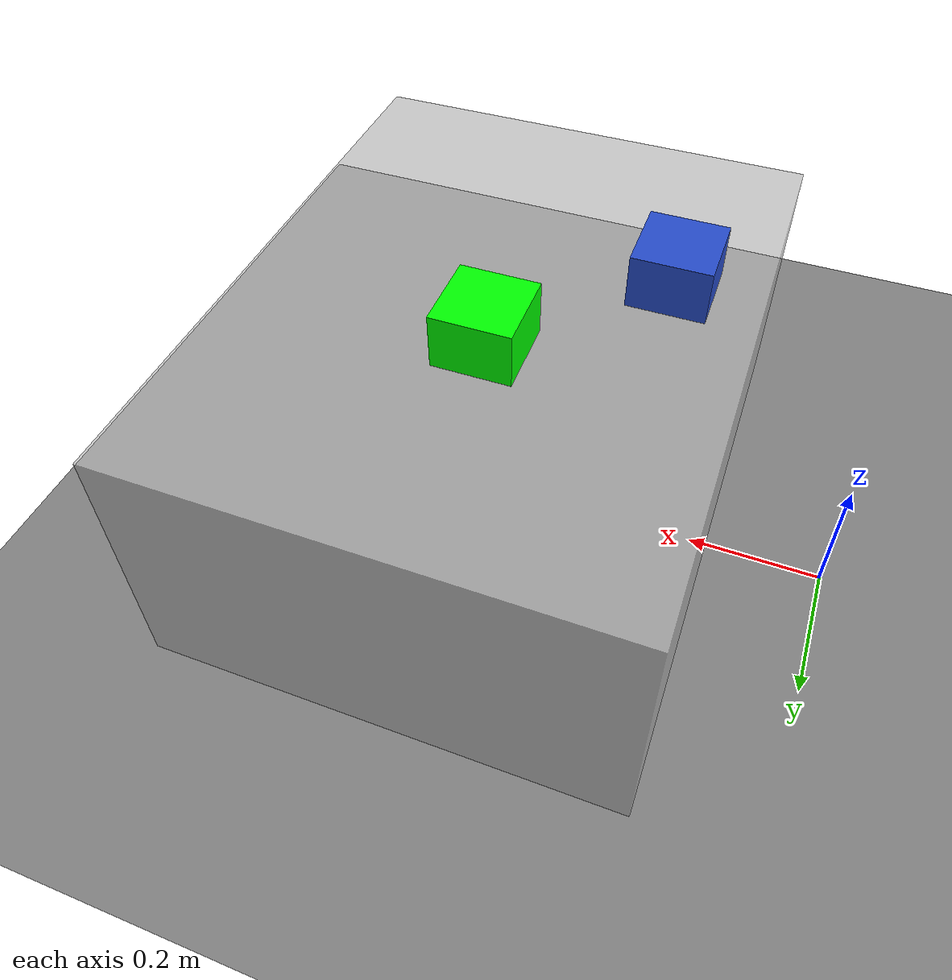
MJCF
<?xml version="1.0" encoding="utf-8"?>
<mujoco model="panda">
	<compiler angle="radian" coordinate="local" texturedir="textures" />
	<option timestep="0.001" cone="elliptic" jacobian="sparse" gravity="0 0 -9.81"/>

	<asset>
		<texture builtin="flat" height="512" width="512" name="texplane" rgb1=".51 .51 .51" rgb2=".51 .51 .51" />
		<texture type="skybox" builtin="gradient" rgb1="0.8 0.898 1" rgb2="0.8 0.898 1" width="32" height="32" />
		<texture name="texture_object" file="block_blue.png" gridsize="3 4" gridlayout=".U..LFRB.D.." />

		<material name="floor_mat" reflectance="0.5" shininess="0.01" specular="0.1" texture="texplane" texuniform="true" />
        <material name="table_mat" specular="0.1" shininess="0.5" reflectance="0.5" rgba="0.73 0.73 0.73 0.7" />
         <material name="object_mat" specular="0" shininess="0.5" reflectance="0" texture="texture_object" />
	</asset>

    <worldbody>
		<geom name="ground_plane" pos="0.4 0. 0" type="plane" conaffinity="3" condim="3" size="2 2 10" material="floor_mat" group="2"/>
		<geom name="table" pos="0.525 0. 0.2" size="0.35 0.45 0.2" conaffinity="3" type="box" material="table_mat" friction="0.8 0.005 0.0001" mass="200" group="2"/>

		<body name="target" pos="0.5 0.1 0.44">
			<joint name="target_joint" type="free" damping="0.01"></joint>
			<geom size="0.055 0.055 0.04" type="box" contype="2" conaffinity="2" name="target_geom" rgba="0 1 0 1" mass="0.2" friction="0.8 0.005 0.0001" group="2" />
		</body>

		<body name="object" pos="0.3 -0.1 0.44">
			<joint name="object_joint" type="free" damping="0.01"></joint>
			<geom size="0.055 0.055 0.04" type="box" condim="3" contype="1" conaffinity="1" name="object_geom" material="object_mat" mass="0.2" friction="0.8 0.005 0.0001" group="1"/>
			<site name="object_site" pos="0 0 0" size="0.001" rgba="1 0 0 0.5" type="sphere" />
		</body>

		<light directional="true" ambient="0.2 0.2 0.2" diffuse="0.8 0.8 0.8" specular="0.3 0.3 0.3" castshadow="false" pos="0 0 4" dir="0 0 -1" name="light0" />
	</worldbody>

	<sensor>
        <framepos name="object_pos" objtype="geom" objname="object_geom"/>
        <framequat name="object_quat" objtype="geom" objname="object_geom"/>
    </sensor>

</mujoco>
